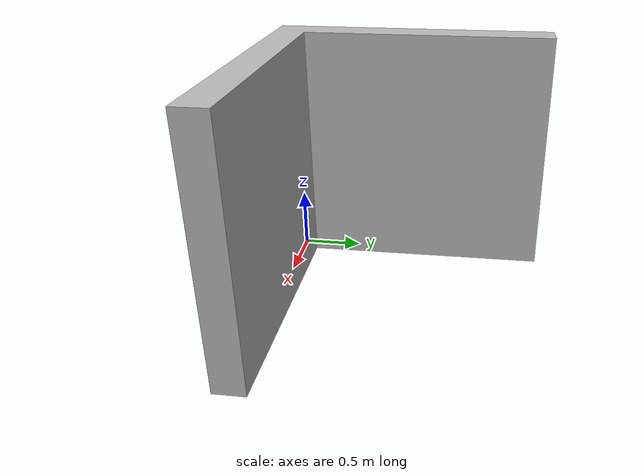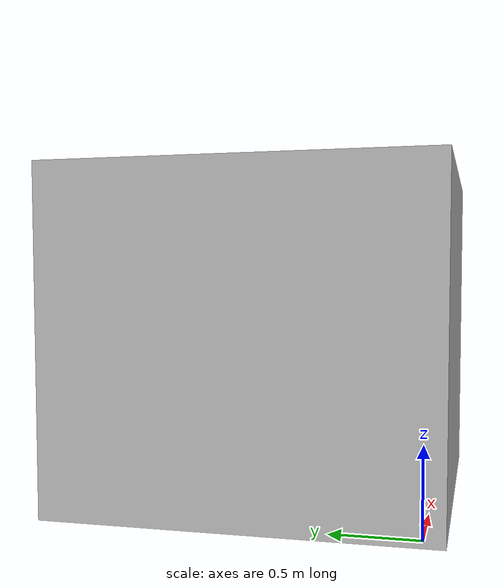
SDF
<?xml version='1.0'?>
<sdf version='1.4'>
  <model name="brick_wall_lshaped_1">
    <static>true</static>
    <pose>0 0 0 0 0 0</pose>

    <link name="brick_wall_lshaped_1">
      <visual name="brick_wall_lshaped_1">
        <geometry>
          <mesh>
            <uri>model://brick_wall_lshaped_1/brick_wall_lshaped_1.dae</uri>
          </mesh>
        </geometry>
      </visual>
      <collision name="brick_wall_lshaped_1">
        <geometry>
          <mesh>
            <uri>model://brick_wall_lshaped_1/brick_wall_lshaped_1.dae</uri>
          </mesh>
        </geometry>
      </collision>
    </link>

  </model>
</sdf>
